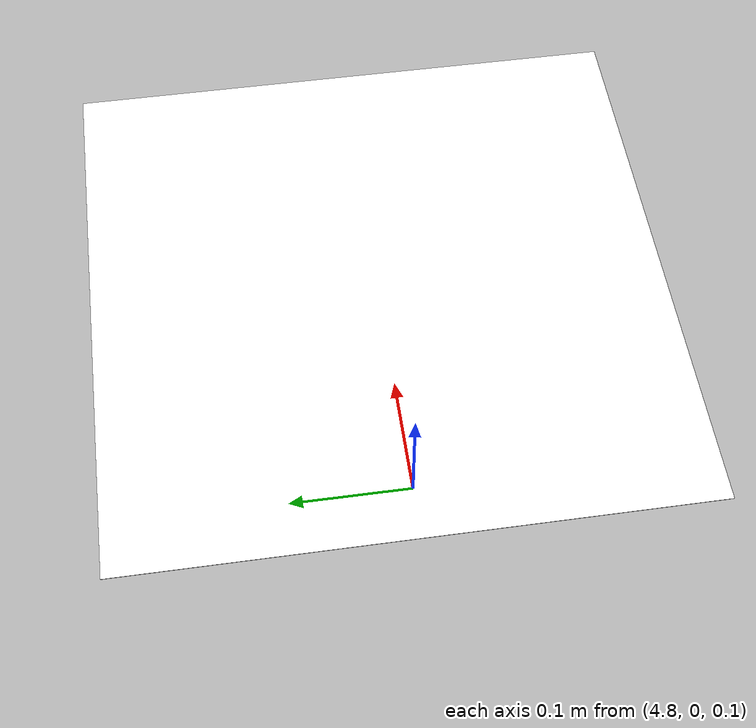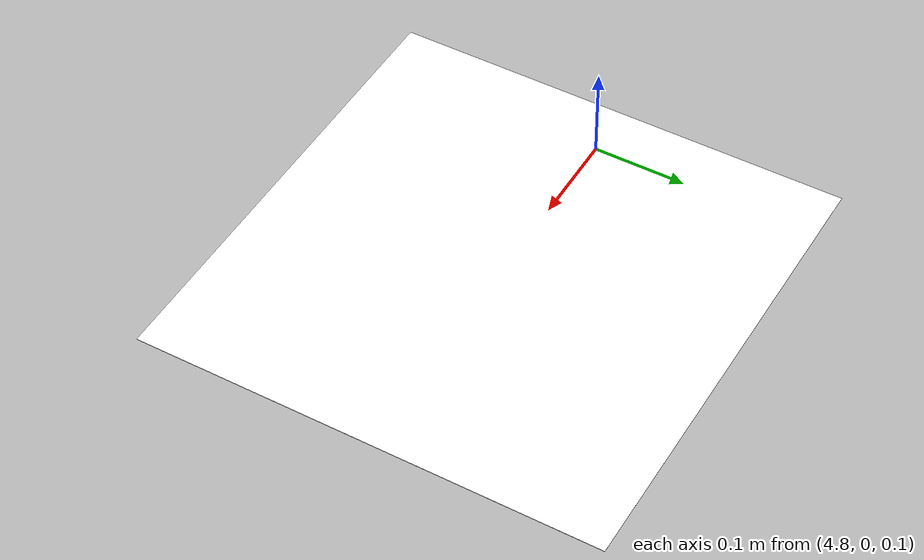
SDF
<?xml version="1.0" encoding="UTF-8"?>
<sdf version='1.9'>
  <model name='arucotag'>
    <static>true</static>
    <pose>5 0 0.11 0 0 0</pose>
    <link name='base'>
      <visual name='base_visual'>
        <geometry>
          <plane>
            <normal>0 0 1</normal>
            <size>0.5 0.5</size>
          </plane>
        </geometry>
        <material>
          <diffuse>1 1 1 1</diffuse>
          <specular>0.4 0.4 0.4 1</specular>
          <pbr>
            <metal>
              <albedo_map>model://arucotag/tag36_11_00000.png</albedo_map>
            </metal>
          </pbr>
        </material>
      </visual>
    </link>
  </model>
</sdf>
